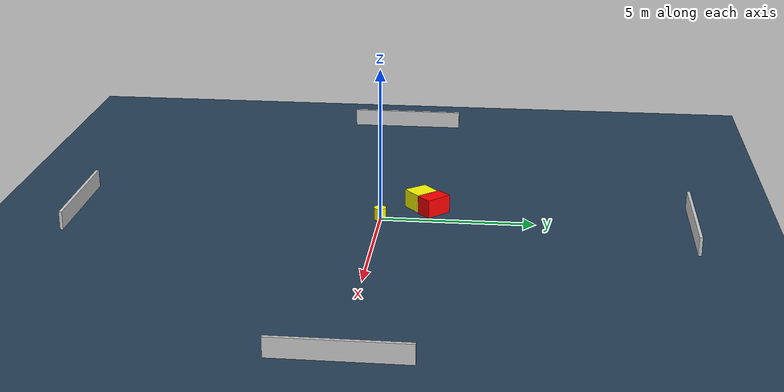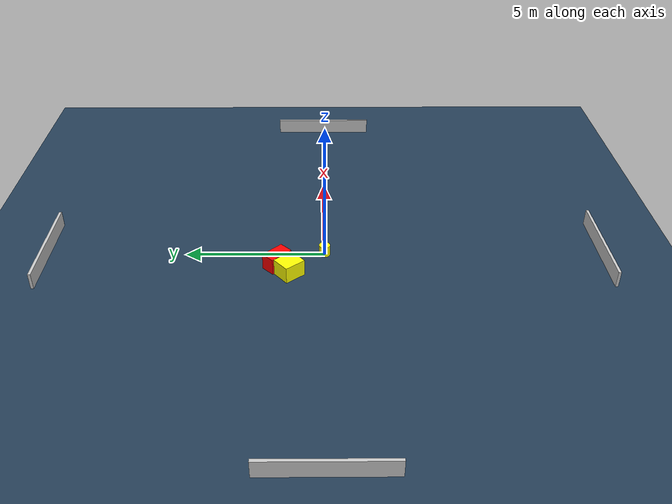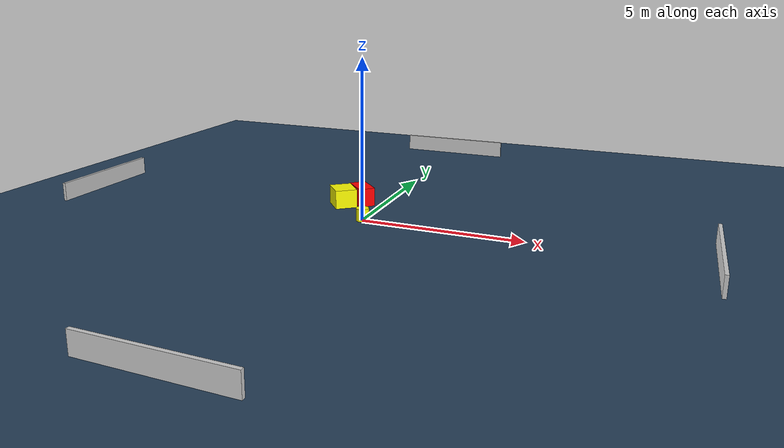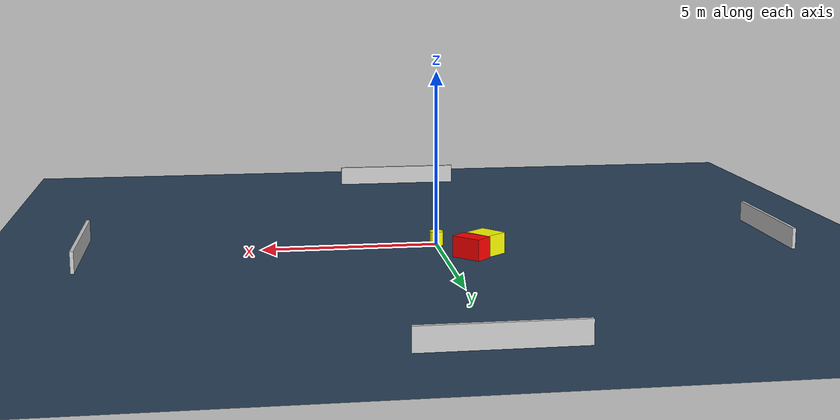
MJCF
<?xml version="1.0" ?>
<mujoco model="generated_environment">
  <option timestep="0.01" integrator="RK4" cone="elliptic"/>
  <default>
    <geom density="1"/>
  </default>
  <asset>
    <texture builtin="gradient" height="3072" name="skybox" rgb1="0.3 0.5 0.7" rgb2="0 0 0" type="skybox" width="512"/>
    <texture builtin="checker" height="300" name="groundplane" rgb1="0.2 0.3 0.4" rgb2="0.1 0.2 0.3" type="2d" width="300"/>
    <material name="groundplane" reflectance="0.2" texrepeat="5 5" texture="groundplane"/>
  </asset>
  <worldbody>
    <light dir="0 0 -1" directional="true" pos="0 0 1.5"/>
    <geom condim="3" friction="0.5 0.005 0.001" material="groundplane" name="floor" pos="0 0 0" size="0 0 0.05" type="plane"/>
    <body name="walls">
      <geom name="wall_1" condim="4" pos="-10.0 0.0 0.3" rgba="0.800000011920929 0.800000011920929 0.800000011920929 1.0" size="0.05 2.0 0.3" type="box"/>
      <geom name="wall_2" condim="4" pos="10.0 0.0 0.3" rgba="0.800000011920929 0.800000011920929 0.800000011920929 1.0" size="0.05 2.0 0.3" type="box"/>
      <geom name="wall_3" condim="4" pos="0.0 -10.0 0.3" rgba="0.800000011920929 0.800000011920929 0.800000011920929 1.0" size="2.0 0.05 0.3" type="box"/>
      <geom name="wall_4" condim="4" pos="0.0 10.0 0.3" rgba="0.800000011920929 0.800000011920929 0.800000011920929 1.0" size="2.0 0.05 0.3" type="box"/>
    </body>
    <body name="robot">
      <joint name="joint_x" type="slide" pos="0 0 0" axis="1 0 0"/>
      <joint name="joint_y" type="slide" pos="0 0 0" axis="0 1 0"/>
      <geom name="robot" type="cylinder" pos="0.0 0.0 0.2" size="0.2 0.2 0.0" mass="5.0" friction="1.0 0.005 0.0001" condim="4" rgba="1.0 1.0 0.0 1.0"/>
    </body>
    <body name="obstacle_1_movable">
      <geom name="obstacle_1_movable" condim="4" pos="-1.2129420453799444 1.2386360739817273 0.3" euler="0 0 309.2865495329153" friction="0.0 0.005 0.001" rgba="1.0 1.0 0.0 1.0" size="0.4033701623532703 0.3550809944845862 0.3" type="box" mass="0.1"/>
      <joint type="free"/>
    </body>
    <body name="obstacle_2_static">
      <geom name="obstacle_2_static" condim="4" pos="-0.7283214214838806 1.68631267362334 0.3" euler="0 0 44.30899028608012" friction="0.0 0.005 0.001" rgba="1.0 0.0 0.0 1.0" size="0.2670415549832026 0.44946133405570365 0.3" type="box"/>
    </body>
  </worldbody>
  <actuator>
    <motor name="actuator_x" joint="joint_x" gear="1" ctrlrange="-1 1"/>
    <motor name="actuator_y" joint="joint_y" gear="1" ctrlrange="-1 1"/>
  </actuator>
</mujoco>
